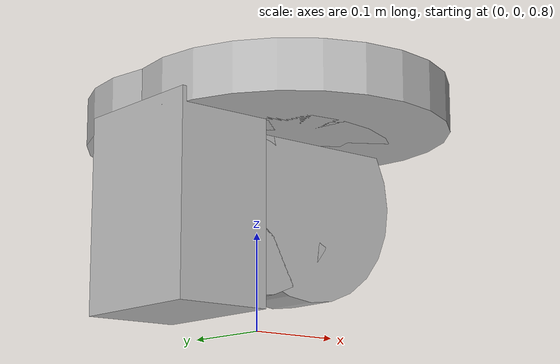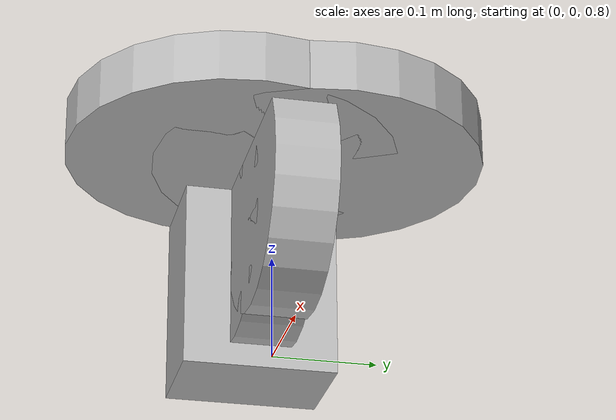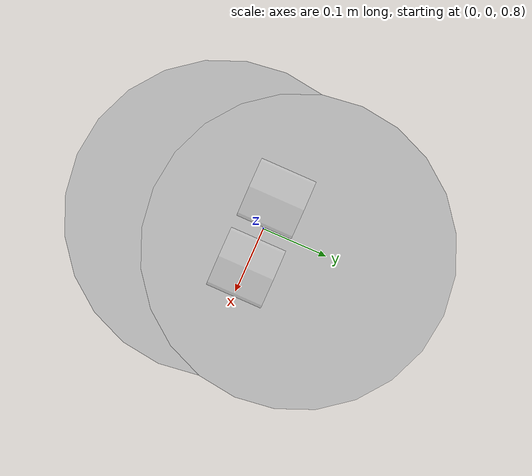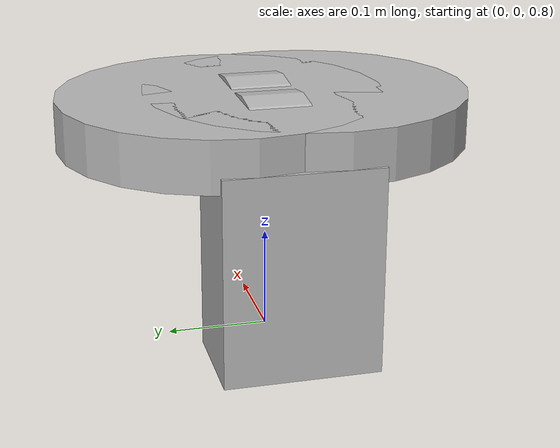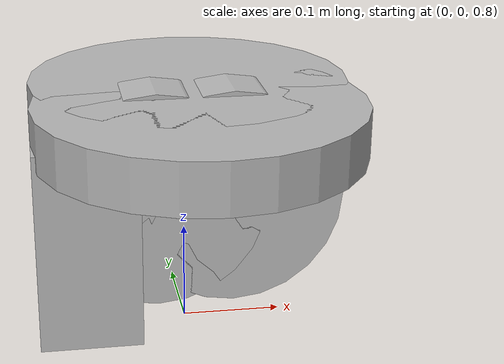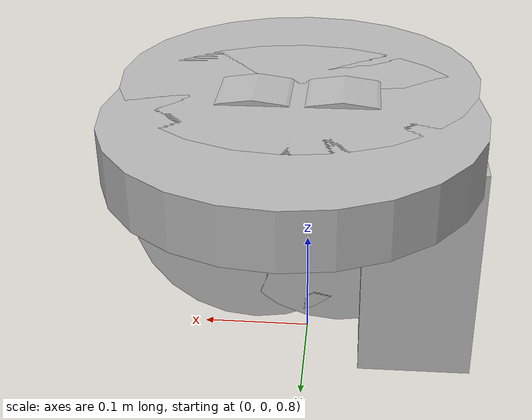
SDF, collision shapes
<sdf version='1.5'>
  <model name='atlas'>
    <link name='pelvis'>
      <pose>0 0 0 0 -0 0</pose>
      <inertial>
        <pose>0.011608 0 0.0266707 0 -0 0</pose>
        <mass>9.609</mass>
        <inertia>
          <ixx>0.125568</ixx>
          <ixy>0.0008</ixy>
          <ixz>-0.000500733</ixz>
          <iyy>0.0972042</iyy>
          <iyz>-0.0005</iyz>
          <izz>0.117936</izz>
        </inertia>
      </inertial>
      <collision name='pelvis_collision'>
        <pose>0.046 0 0.01 1.5708 -0 0</pose>
        <geometry>
          <cylinder>
            <length>0.06</length>
            <radius>0.11</radius>
          </cylinder>
        </geometry>
        <surface>
          <contact>
            <ode/>
          </contact>
          <friction>
            <ode>
              <mu>0.9</mu>
              <mu2>0.9</mu2>
            </ode>
          </friction>
        </surface>
      </collision>
      <collision name='pelvis_collision_pelvis_1'>
        <pose>-0.03 0 0.01 1.5708 -0 0</pose>
        <geometry>
          <cylinder>
            <length>0.06</length>
            <radius>0.11</radius>
          </cylinder>
        </geometry>
        <surface>
          <contact>
            <ode/>
          </contact>
          <friction>
            <ode>
              <mu>0.9</mu>
              <mu2>0.9</mu2>
            </ode>
          </friction>
        </surface>
      </collision>
      <collision name='pelvis_collision_pelvis_2'>
        <pose>0.01 0.042 0.09 0 -0 0</pose>
        <geometry>
          <cylinder>
            <length>0.05</length>
            <radius>0.16</radius>
          </cylinder>
        </geometry>
        <surface>
          <contact>
            <ode/>
          </contact>
          <friction>
            <ode>
              <mu>0.9</mu>
              <mu2>0.9</mu2>
            </ode>
          </friction>
        </surface>
      </collision>
      <collision name='pelvis_collision_pelvis_3'>
        <pose>0.01 -0.042 0.09 0 -0 0</pose>
        <geometry>
          <cylinder>
            <length>0.05</length>
            <radius>0.16</radius>
          </cylinder>
        </geometry>
        <surface>
          <contact>
            <ode/>
          </contact>
          <friction>
            <ode>
              <mu>0.9</mu>
              <mu2>0.9</mu2>
            </ode>
          </friction>
        </surface>
      </collision>
      <collision name='pelvis_collision_pelvis_4'>
        <pose>-0.1 0 -0.02 0 -0 0</pose>
        <geometry>
          <box>
            <size>0.1 0.15 0.2</size>
          </box>
        </geometry>
        <surface>
          <contact>
            <ode/>
          </contact>
          <friction>
            <ode>
              <mu>0.9</mu>
              <mu2>0.9</mu2>
            </ode>
          </friction>
        </surface>
      </collision>
      <visual name='pelvis_visual'>
        <pose>0 0 0 0 -0 0</pose>
        <geometry>
          <mesh>
            <scale>1 1 1</scale>
            <uri>model://atlas_description/meshes_unplugged/pelvis.obj</uri>
          </mesh>
        </geometry>
      </visual>
      <visual name='pelvis_visual_pelvis_1'>
        <pose>0.0599153 0 -0.01415 0 -0 0</pose>
        <geometry>
          <box>
            <size>0.01 0.01 0.01</size>
          </box>
        </geometry>
      </visual>
      <velocity_decay/>
      <gravity>1</gravity>
      <velocity_decay/>
      <self_collide>0</self_collide>

    </link>
    <pose>0 0 0.93 0 -0 0</pose>
  </model>
</sdf>
